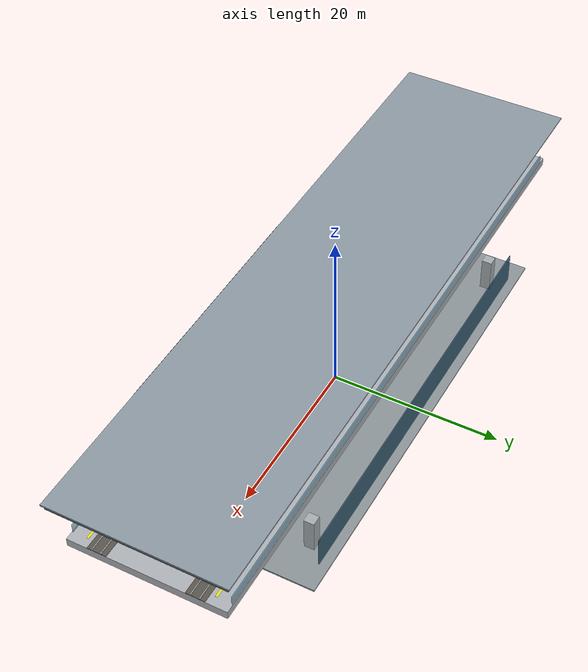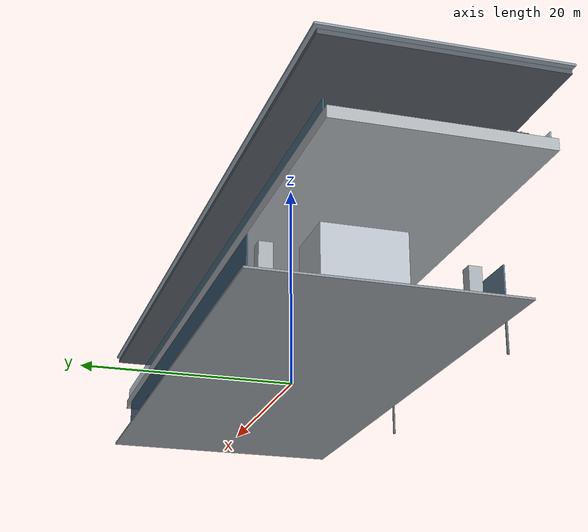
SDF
<?xml version="1.0" ?>
<sdf version="1.8">
  <model name="xinzhuang_station">
    <static>true</static>
    <link name="station_link">

      <!-- ==================== 物理碰撞幾何 (分層剛體 Box，確保車輛與行人零穿模) ==================== -->
      <!-- 1F 地面大廳主體碰撞剛體 -->
      <collision name="concourse_col">
        <pose>0 0 2.2 0 0 0</pose>
        <geometry><box><size>52.0 22.0 4.4</size></box></geometry>
      </collision>

      <!-- 2F 高架乘車月台層底板碰撞剛體 -->
      <collision name="platform_col">
        <pose>0 0 8.0 0 0 0</pose>
        <geometry><box><size>76.0 18.0 1.2</size></box></geometry>
      </collision>

      <!-- 西側與東側電梯與樓梯井核心筒碰撞剛體 -->
      <collision name="core_west_col">
        <pose>-18.0 0 7.0 0 0 0</pose>
        <geometry><box><size>6.0 8.0 14.0</size></box></geometry>
      </collision>
      <collision name="core_east_col">
        <pose>18.0 0 7.0 0 0 0</pose>
        <geometry><box><size>6.0 8.0 14.0</size></box></geometry>
      </collision>

      <!-- 頂部月台鋼構大跨度雨棚遮雨屋頂碰撞剛體 -->
      <collision name="roof_col">
        <pose>0 0 13.5 0 0 0</pose>
        <geometry><box><size>78.0 20.0 1.0</size></box></geometry>
      </collision>

      <!-- ==================== 1F 地面層售票大廳與迎賓入口 (Concourse & Entrance) ==================== -->
      <!-- 地面基礎大理石/清水模地坪基座 -->
      <visual name="plinth_vis">
        <pose>0 0 0.1 0 0 0</pose>
        <geometry><box><size>54.0 24.0 0.2</size></box></geometry>
        <material>
          <ambient>0.50 0.52 0.54 1</ambient>
          <diffuse>0.55 0.58 0.60 1</diffuse>
        </material>
      </visual>

      <!-- 大廳主結構混凝土柱 (Structural Concrete Columns) -->
      <visual name="col_sw_vis"><pose>-22.0 -9.0 2.2 0 0 0</pose><geometry><box><size>1.2 1.2 4.2</size></box></geometry><material><ambient>0.6 0.62 0.65 1</ambient><diffuse>0.65 0.68 0.70 1</diffuse></material></visual>
      <visual name="col_se_vis"><pose>22.0 -9.0 2.2 0 0 0</pose><geometry><box><size>1.2 1.2 4.2</size></box></geometry><material><ambient>0.6 0.62 0.65 1</ambient><diffuse>0.65 0.68 0.70 1</diffuse></material></visual>
      <visual name="col_nw_vis"><pose>-22.0 9.0 2.2 0 0 0</pose><geometry><box><size>1.2 1.2 4.2</size></box></geometry><material><ambient>0.6 0.62 0.65 1</ambient><diffuse>0.65 0.68 0.70 1</diffuse></material></visual>
      <visual name="col_ne_vis"><pose>22.0 9.0 2.2 0 0 0</pose><geometry><box><size>1.2 1.2 4.2</size></box></geometry><material><ambient>0.6 0.62 0.65 1</ambient><diffuse>0.65 0.68 0.70 1</diffuse></material></visual>

      <!-- 1F 大面積採光玻璃帷幕 (Glass Curtain Walls - 青透色帶深色鋁擠型窗框) -->
      <visual name="glass_front_vis">
        <pose>0 -10.9 2.2 0 0 0</pose>
        <geometry><box><size>48.0 0.1 3.8</size></box></geometry>
        <material>
          <ambient>0.15 0.25 0.35 0.85</ambient>
          <diffuse>0.20 0.35 0.45 0.85</diffuse>
          <specular>0.9 0.95 1.0 1</specular>
        </material>
      </visual>

      <visual name="glass_rear_vis">
        <pose>0 10.9 2.2 0 0 0</pose>
        <geometry><box><size>48.0 0.1 3.8</size></box></geometry>
        <material>
          <ambient>0.15 0.25 0.35 0.85</ambient>
          <diffuse>0.20 0.35 0.45 0.85</diffuse>
          <specular>0.9 0.95 1.0 1</specular>
        </material>
      </visual>

      <!-- 正門懸挑式鋼構防雨遮 (Main Entrance Cantilever Portico) -->
      <visual name="entrance_canopy_vis">
        <pose>0 -13.5 4.0 0 0 0</pose>
        <geometry><box><size>32.0 5.5 0.35</size></box></geometry>
        <material>
          <ambient>0.22 0.24 0.26 1</ambient>
          <diffuse>0.26 0.28 0.30 1</diffuse>
        </material>
      </visual>

      <!-- 遮雨棚支撐鋼柱 (Steel Support Struts) -->
      <visual name="canopy_strut_l"><pose>-14.0 -15.8 2.0 0 0 0</pose><geometry><cylinder><radius>0.12</radius><length>4.0</length></cylinder></geometry><material><ambient>0.3 0.32 0.35 1</ambient><diffuse>0.35 0.38 0.4 1</diffuse></material></visual>
      <visual name="canopy_strut_r"><pose>14.0 -15.8 2.0 0 0 0</pose><geometry><cylinder><radius>0.12</radius><length>4.0</length></cylinder></geometry><material><ambient>0.3 0.32 0.35 1</ambient><diffuse>0.35 0.38 0.4 1</diffuse></material></visual>

      <!-- 標誌性車站正門發光招牌 (Illuminated TRA Station Nameboard) -->
      <!-- 經典台鐵深藍色底板，白色「新莊車站 TRA Xin-Zhuang Station」標示 -->
      <visual name="station_signboard_bg">
        <pose>0 -13.6 4.6 0 0 0</pose>
        <geometry><box><size>16.0 0.15 1.1</size></box></geometry>
        <material>
          <ambient>0.05 0.20 0.50 1</ambient>
          <diffuse>0.08 0.28 0.65 1</diffuse>
        </material>
      </visual>

      <visual name="station_signboard_emblem">
        <pose>-6.0 -13.7 4.6 0 0 0</pose>
        <geometry><cylinder><radius>0.42</radius><length>0.1</length></cylinder></geometry>
        <material>
          <ambient>0.85 0.85 0.9 1</ambient>
          <diffuse>0.95 0.95 1.0 1</diffuse>
          <emissive>0.6 0.6 0.7 1</emissive>
        </material>
      </visual>

      <visual name="station_signboard_text">
        <pose>1.5 -13.7 4.6 0 0 0</pose>
        <geometry><box><size>11.0 0.08 0.6</size></box></geometry>
        <material>
          <ambient>0.95 0.95 0.95 1</ambient>
          <diffuse>0.98 0.98 0.98 1</diffuse>
          <emissive>0.8 0.8 0.8 1</emissive>
        </material>
      </visual>

      <!-- 1F 自動售票機與出入閘門景觀示意 (Ticket Gates Alcove) -->
      <visual name="fare_gates_vis">
        <pose>0 0 0.6 0 0 0</pose>
        <geometry><box><size>12.0 1.2 1.1</size></box></geometry>
        <material><ambient>0.3 0.35 0.4 1</ambient><diffuse>0.35 0.4 0.45 1</diffuse></material>
      </visual>

      <!-- ==================== 垂直動線核心筒 (Stair & Elevator Towers) ==================== -->
      <visual name="tower_west_vis">
        <pose>-18.0 0 7.0 0 0 0</pose>
        <geometry><box><size>5.8 7.8 13.8</size></box></geometry>
        <material>
          <ambient>0.65 0.68 0.70 1</ambient>
          <diffuse>0.72 0.75 0.78 1</diffuse>
        </material>
      </visual>

      <visual name="tower_east_vis">
        <pose>18.0 0 7.0 0 0 0</pose>
        <geometry><box><size>5.8 7.8 13.8</size></box></geometry>
        <material>
          <ambient>0.65 0.68 0.70 1</ambient>
          <diffuse>0.72 0.75 0.78 1</diffuse>
        </material>
      </visual>

      <!-- ==================== 2F 高架月台層與軌道結構 (Elevated Platform & Tracks) ==================== -->
      <!-- 鋼筋混凝土厚重樑板結構 (Concrete Platform Deck) -->
      <visual name="platform_deck_vis">
        <pose>0 0 7.9 0 0 0</pose>
        <geometry><box><size>76.0 18.0 1.0</size></box></geometry>
        <material>
          <ambient>0.62 0.64 0.66 1</ambient>
          <diffuse>0.68 0.70 0.72 1</diffuse>
        </material>
      </visual>

      <!-- 月台防落軌玻璃防護安全欄杆 (Platform Safety Balustrades) -->
      <visual name="platform_rail_s">
        <pose>0 -8.9 8.9 0 0 0</pose>
        <geometry><box><size>74.0 0.1 1.1</size></box></geometry>
        <material><ambient>0.2 0.4 0.5 0.6</ambient><diffuse>0.3 0.5 0.6 0.6</diffuse></material>
      </visual>
      <visual name="platform_rail_n">
        <pose>0 8.9 8.9 0 0 0</pose>
        <geometry><box><size>74.0 0.1 1.1</size></box></geometry>
        <material><ambient>0.2 0.4 0.5 0.6</ambient><diffuse>0.3 0.5 0.6 0.6</diffuse></material>
      </visual>

      <!-- 月台候車黃色警戒等候線 (Yellow Platform Warning Edge Lines) -->
      <visual name="safety_line_s"><pose>0 -7.2 8.42 0 0 0</pose><geometry><box><size>74.0 0.25 0.005</size></box></geometry><material><ambient>0.9 0.85 0.05 1</ambient><diffuse>0.95 0.9 0.08 1</diffuse></material></visual>
      <visual name="safety_line_n"><pose>0 7.2 8.42 0 0 0</pose><geometry><box><size>74.0 0.25 0.005</size></box></geometry><material><ambient>0.9 0.85 0.05 1</ambient><diffuse>0.95 0.9 0.08 1</diffuse></material></visual>

      <!-- 月台雙軌鐵軌與道碴示意 (Steel Rails & Ballast: 南北雙線) -->
      <visual name="track_south_bed"><pose>0 -5.5 8.43 0 0 0</pose><geometry><box><size>76.0 2.2 0.06</size></box></geometry><material><ambient>0.3 0.28 0.26 1</ambient><diffuse>0.35 0.33 0.30 1</diffuse></material></visual>
      <visual name="track_north_bed"><pose>0 5.5 8.43 0 0 0</pose><geometry><box><size>76.0 2.2 0.06</size></box></geometry><material><ambient>0.3 0.28 0.26 1</ambient><diffuse>0.35 0.33 0.30 1</diffuse></material></visual>

      <!-- 鋼軌 (Rails) -->
      <visual name="rail_s1"><pose>0 -6.0 8.50 0 0 0</pose><geometry><box><size>76.0 0.07 0.10</size></box></geometry><material><ambient>0.7 0.72 0.75 1</ambient><diffuse>0.8 0.82 0.85 1</diffuse><specular>0.9 0.9 0.9 1</specular></material></visual>
      <visual name="rail_s2"><pose>0 -5.0 8.50 0 0 0</pose><geometry><box><size>76.0 0.07 0.10</size></box></geometry><material><ambient>0.7 0.72 0.75 1</ambient><diffuse>0.8 0.82 0.85 1</diffuse><specular>0.9 0.9 0.9 1</specular></material></visual>
      <visual name="rail_n1"><pose>0 5.0 8.50 0 0 0</pose><geometry><box><size>76.0 0.07 0.10</size></box></geometry><material><ambient>0.7 0.72 0.75 1</ambient><diffuse>0.8 0.82 0.85 1</diffuse><specular>0.9 0.9 0.9 1</specular></material></visual>
      <visual name="rail_n2"><pose>0 6.0 8.50 0 0 0</pose><geometry><box><size>76.0 0.07 0.10</size></box></geometry><material><ambient>0.7 0.72 0.75 1</ambient><diffuse>0.8 0.82 0.85 1</diffuse><specular>0.9 0.9 0.9 1</specular></material></visual>

      <!-- ==================== 鋼結構拱形遮雨大棚 (Steel Truss Curved Canopy) ==================== -->
      <!-- 鋼構主拱桁架樑列 (Truss Arches) -->
      <visual name="roof_truss_main">
        <pose>0 0 13.6 0 0 0</pose>
        <geometry><box><size>78.0 20.0 0.4</size></box></geometry>
        <material>
          <ambient>0.28 0.30 0.32 1</ambient>
          <diffuse>0.32 0.35 0.38 1</diffuse>
        </material>
      </visual>

      <!-- 弧形金屬波浪烤漆屋面板 (Curved Corrugated Roof Surface - 銀灰/深灰) -->
      <visual name="roof_cladding_vis">
        <pose>0 0 14.1 0 0 0</pose>
        <geometry><box><size>78.5 20.5 0.2</size></box></geometry>
        <material>
          <ambient>0.48 0.52 0.55 1</ambient>
          <diffuse>0.55 0.60 0.64 1</diffuse>
          <specular>0.6 0.65 0.7 1</specular>
        </material>
      </visual>

      <!-- 鋼構支撐斜柱 (Y-Shaped Canopy Support Columns) -->
      <visual name="truss_col1"><pose>-25.0 0 10.8 0 0 0</pose><geometry><cylinder><radius>0.25</radius><length>4.8</length></cylinder></geometry><material><ambient>0.25 0.28 0.3 1</ambient><diffuse>0.3 0.33 0.36 1</diffuse></material></visual>
      <visual name="truss_col2"><pose>0.0 0 10.8 0 0 0</pose><geometry><cylinder><radius>0.25</radius><length>4.8</length></cylinder></geometry><material><ambient>0.25 0.28 0.3 1</ambient><diffuse>0.3 0.33 0.36 1</diffuse></material></visual>
      <visual name="truss_col3"><pose>25.0 0 10.8 0 0 0</pose><geometry><cylinder><radius>0.25</radius><length>4.8</length></cylinder></geometry><material><ambient>0.25 0.28 0.3 1</ambient><diffuse>0.3 0.33 0.36 1</diffuse></material></visual>

      <!-- 月台發光站名燈箱 (Platform Illuminated Station Signs) -->
      <visual name="plat_sign1"><pose>-10.0 0 10.2 0 0 0</pose><geometry><box><size>2.2 0.25 0.6</size></box></geometry><material><ambient>0.1 0.3 0.7 1</ambient><diffuse>0.15 0.4 0.85 1</diffuse><emissive>0.7 0.7 0.8 1</emissive></material></visual>
      <visual name="plat_sign2"><pose>10.0 0 10.2 0 0 0</pose><geometry><box><size>2.2 0.25 0.6</size></box></geometry><material><ambient>0.1 0.3 0.7 1</ambient><diffuse>0.15 0.4 0.85 1</diffuse><emissive>0.7 0.7 0.8 1</emissive></material></visual>

    </link>
  </model>
</sdf>
